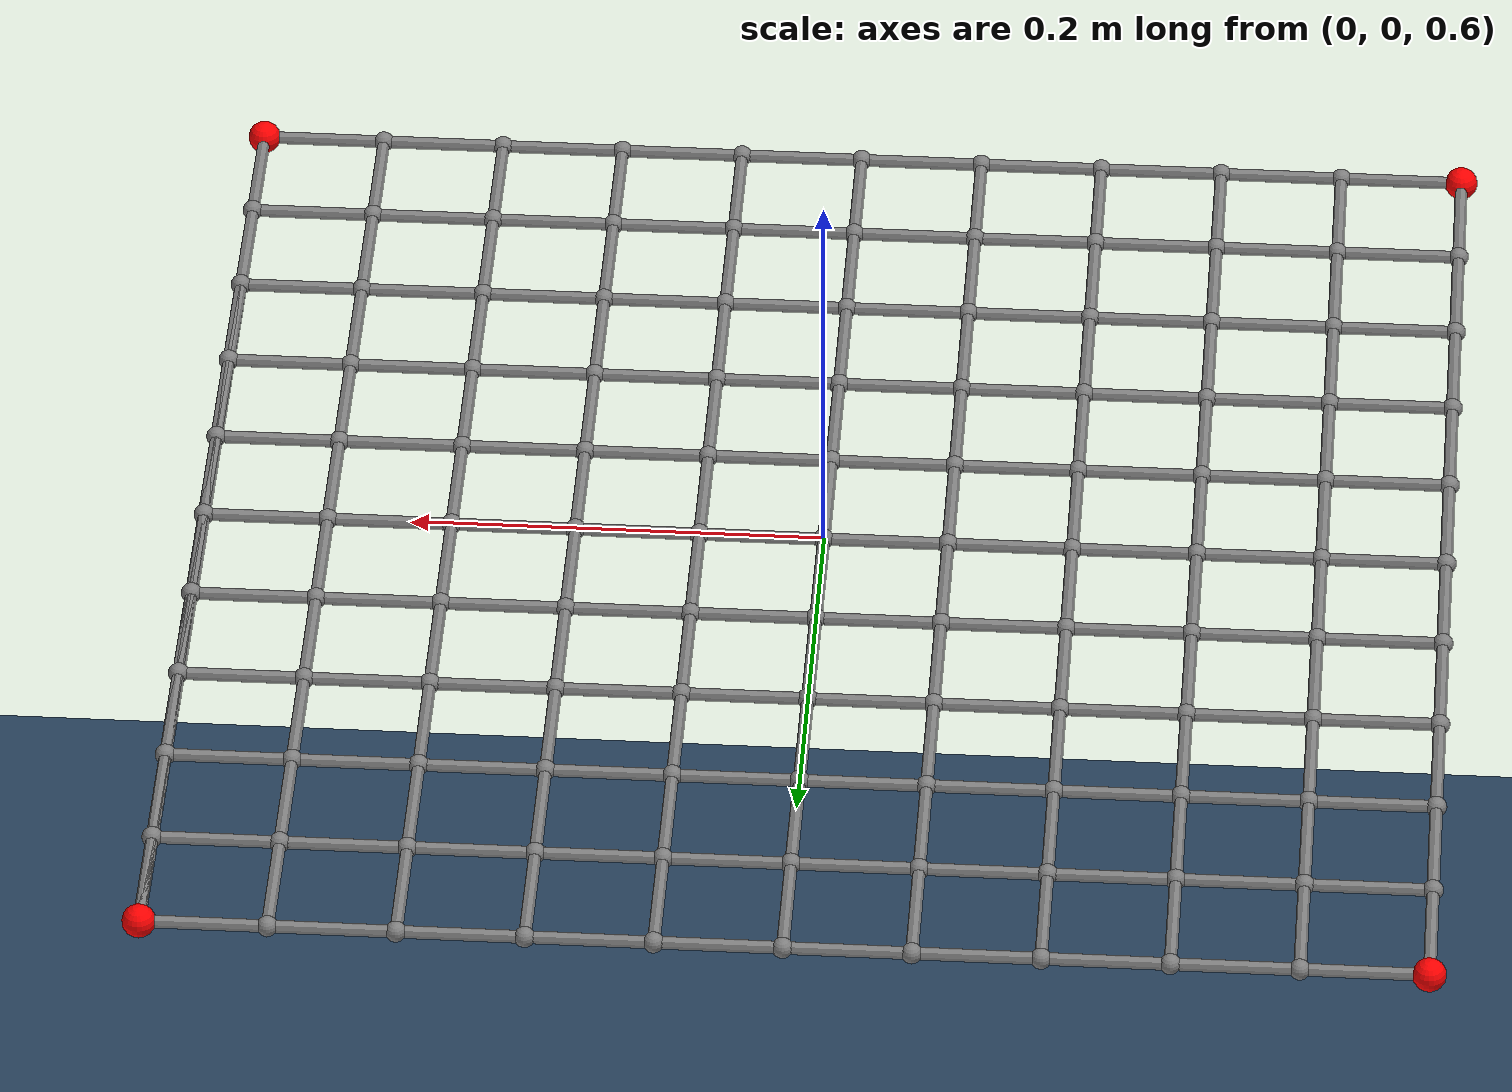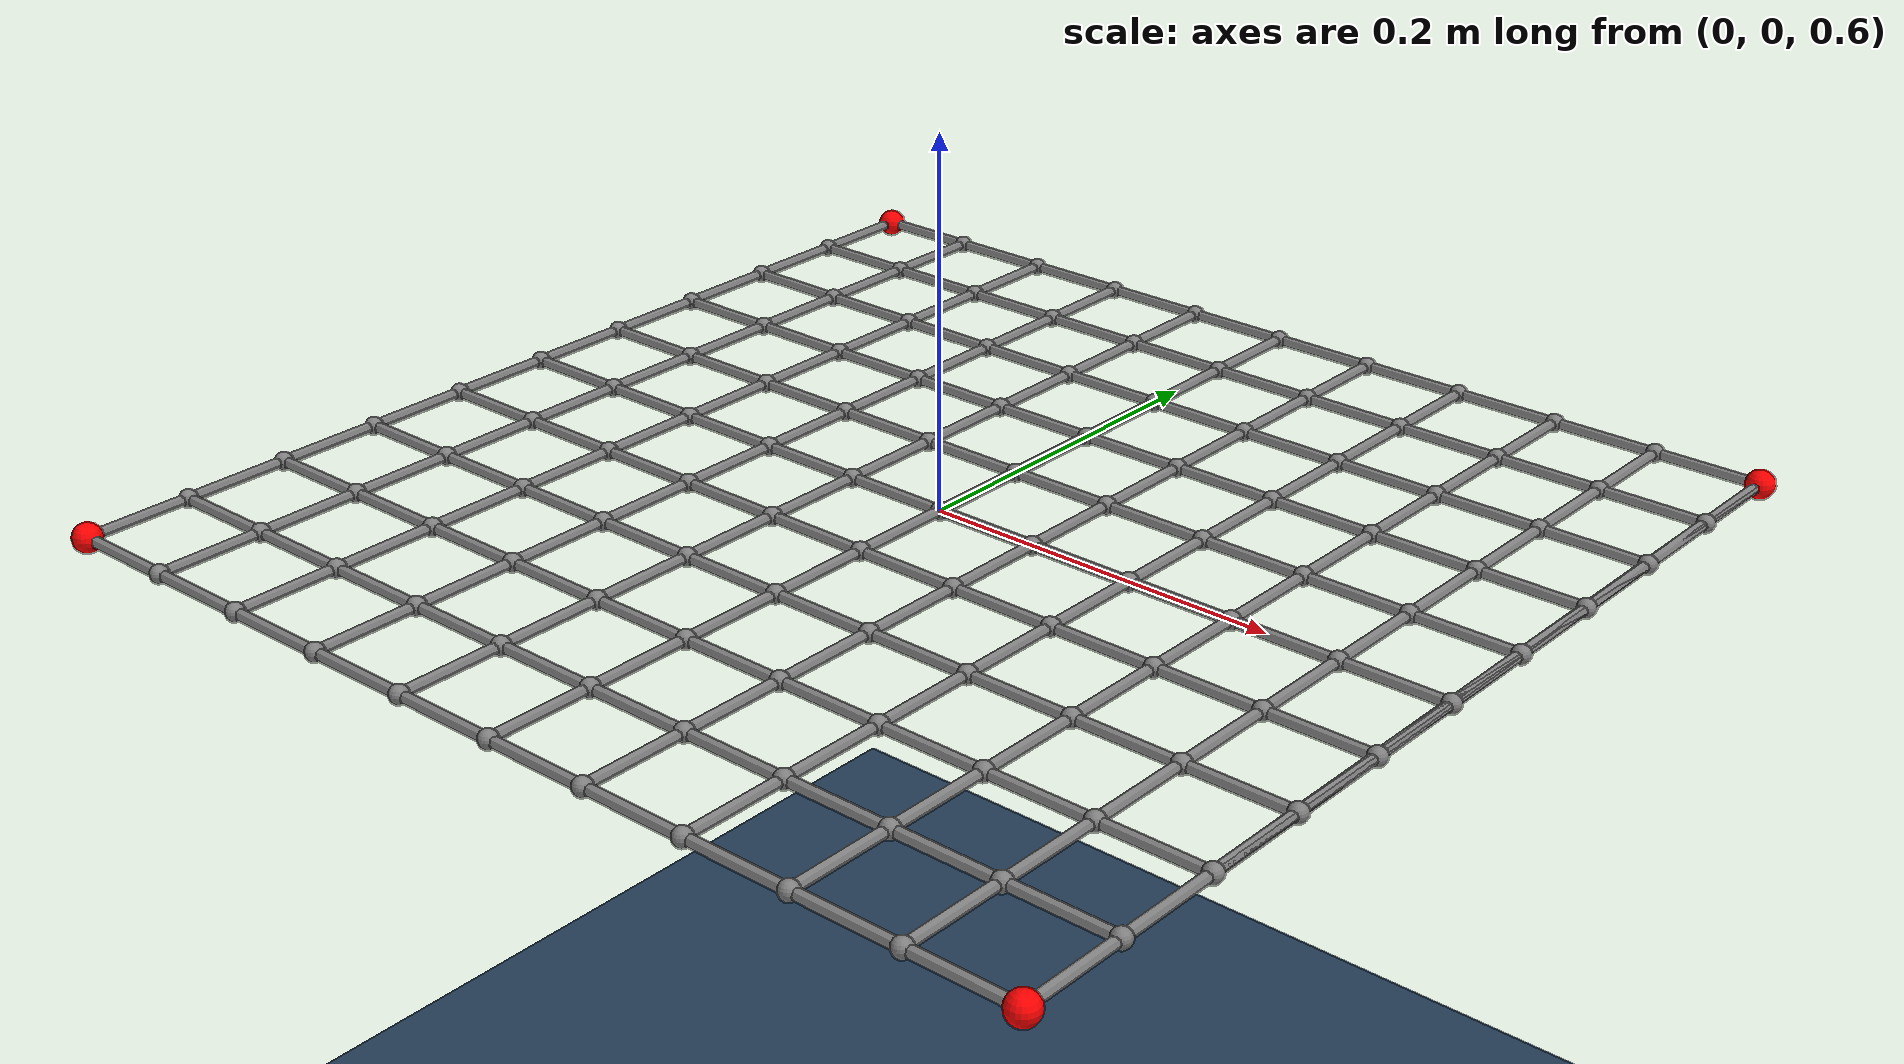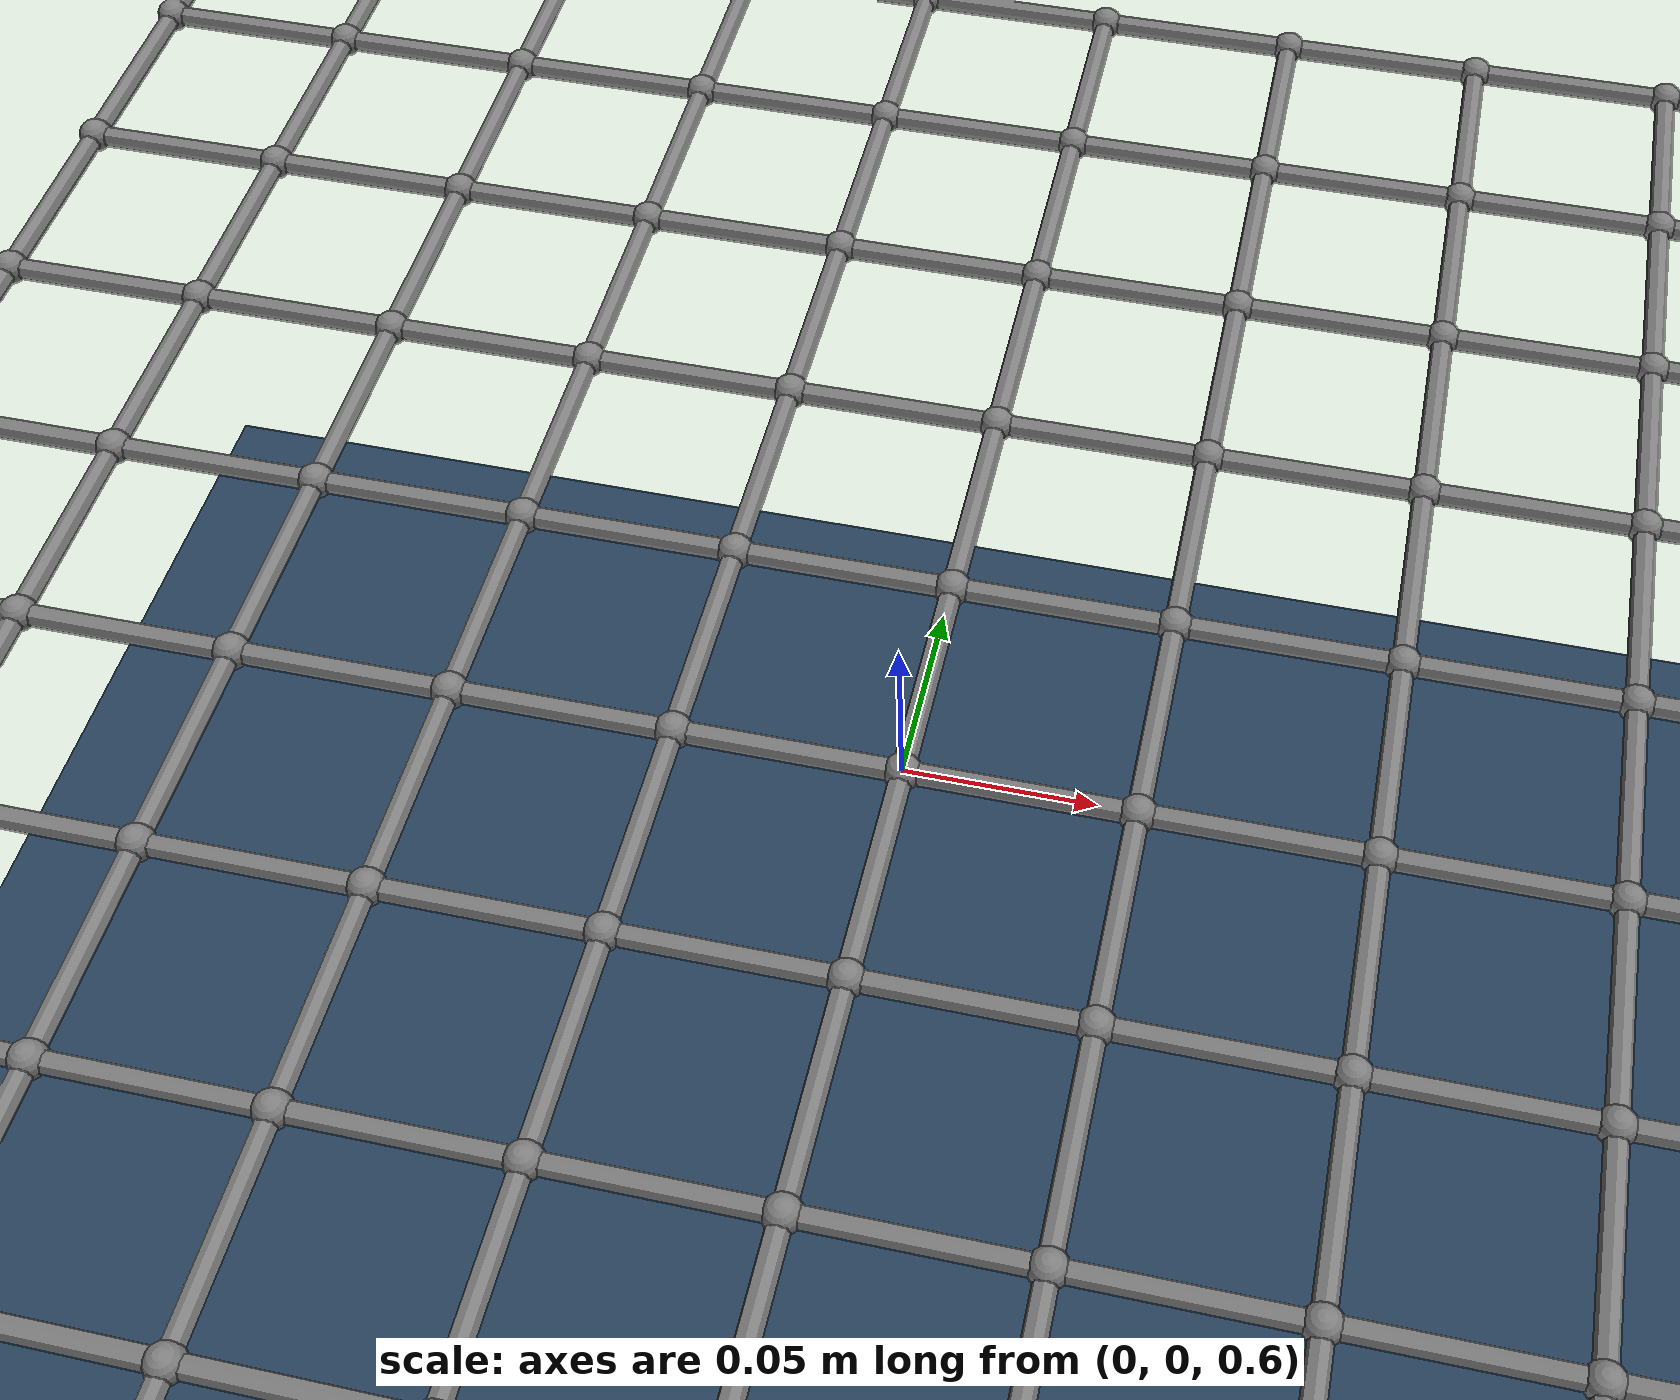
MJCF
<mujoco model="ultra_dense_net">
    <compiler meshdir="/home/lsq/scoop_it/assets/urdf/meshes" balanceinertia="true"/>
    <option timestep="0.002" integrator="RK4">
        <flag contact="enable"/>
    </option>

    <asset>
        <texture type="skybox" builtin="gradient" rgb1="0.3 0.5 0.7" rgb2="0 0 0" width="512" height="3072"/>
        <texture type="2d" name="groundplane" builtin="checker" mark="edge" rgb1="0.2 0.3 0.4" rgb2="0.1 0.2 0.3" markrgb="0.8 0.8 0.8" width="300" height="300"/>
        <material name="groundplane" texture="groundplane" texuniform="true" texrepeat="5 5" reflectance="0.2"/>
    </asset>

    <worldbody>
        <light pos="0 0 3" dir="0 0 -1" directional="true"/>
        <geom name="floor" size="0 0 0.05" type="plane" material="groundplane"/>

        <body name="b0_0" pos="-0.30 -0.30 0.6"><geom type="sphere" size="0.008" rgba="1 0 0 1"/><site name="s0_0"/></body>
        <body name="b0_1" pos="-0.24 -0.30 0.6"><joint type="ball"/><geom type="sphere" size="0.005"/><site name="s0_1"/></body>
        <body name="b0_2" pos="-0.18 -0.30 0.6"><joint type="ball"/><geom type="sphere" size="0.005"/><site name="s0_2"/></body>
        <body name="b0_3" pos="-0.12 -0.30 0.6"><joint type="ball"/><geom type="sphere" size="0.005"/><site name="s0_3"/></body>
        <body name="b0_4" pos="-0.06 -0.30 0.6"><joint type="ball"/><geom type="sphere" size="0.005"/><site name="s0_4"/></body>
        <body name="b0_5" pos="0.00  -0.30 0.6"><joint type="ball"/><geom type="sphere" size="0.005"/><site name="s0_5"/></body>
        <body name="b0_6" pos="0.06  -0.30 0.6"><joint type="ball"/><geom type="sphere" size="0.005"/><site name="s0_6"/></body>
        <body name="b0_7" pos="0.12  -0.30 0.6"><joint type="ball"/><geom type="sphere" size="0.005"/><site name="s0_7"/></body>
        <body name="b0_8" pos="0.18  -0.30 0.6"><joint type="ball"/><geom type="sphere" size="0.005"/><site name="s0_8"/></body>
        <body name="b0_9" pos="0.24  -0.30 0.6"><joint type="ball"/><geom type="sphere" size="0.005"/><site name="s0_9"/></body>
        <body name="b0_10" pos="0.30 -0.30 0.6"><geom type="sphere" size="0.008" rgba="1 0 0 1"/><site name="s0_10"/></body>

        <body name="b1_0" pos="-0.30 -0.24 0.6"><joint type="ball"/><geom type="sphere" size="0.005"/><site name="s1_0"/></body>
        <body name="b1_1" pos="-0.24 -0.24 0.6"><joint type="ball"/><geom type="sphere" size="0.005"/><site name="s1_1"/></body>
        <body name="b1_2" pos="-0.18 -0.24 0.6"><joint type="ball"/><geom type="sphere" size="0.005"/><site name="s1_2"/></body>
        <body name="b1_3" pos="-0.12 -0.24 0.6"><joint type="ball"/><geom type="sphere" size="0.005"/><site name="s1_3"/></body>
        <body name="b1_4" pos="-0.06 -0.24 0.6"><joint type="ball"/><geom type="sphere" size="0.005"/><site name="s1_4"/></body>
        <body name="b1_5" pos="0.00  -0.24 0.6"><joint type="ball"/><geom type="sphere" size="0.005"/><site name="s1_5"/></body>
        <body name="b1_6" pos="0.06  -0.24 0.6"><joint type="ball"/><geom type="sphere" size="0.005"/><site name="s1_6"/></body>
        <body name="b1_7" pos="0.12  -0.24 0.6"><joint type="ball"/><geom type="sphere" size="0.005"/><site name="s1_7"/></body>
        <body name="b1_8" pos="0.18  -0.24 0.6"><joint type="ball"/><geom type="sphere" size="0.005"/><site name="s1_8"/></body>
        <body name="b1_9" pos="0.24  -0.24 0.6"><joint type="ball"/><geom type="sphere" size="0.005"/><site name="s1_9"/></body>
        <body name="b1_10" pos="0.30 -0.24 0.6"><joint type="ball"/><geom type="sphere" size="0.005"/><site name="s1_10"/></body>

        <body name="b2_0" pos="-0.30 -0.18 0.6"><joint type="ball"/><geom type="sphere" size="0.005"/><site name="s2_0"/></body>
        <body name="b2_1" pos="-0.24 -0.18 0.6"><joint type="ball"/><geom type="sphere" size="0.005"/><site name="s2_1"/></body>
        <body name="b2_2" pos="-0.18 -0.18 0.6"><joint type="ball"/><geom type="sphere" size="0.005"/><site name="s2_2"/></body>
        <body name="b2_3" pos="-0.12 -0.18 0.6"><joint type="ball"/><geom type="sphere" size="0.005"/><site name="s2_3"/></body>
        <body name="b2_4" pos="-0.06 -0.18 0.6"><joint type="ball"/><geom type="sphere" size="0.005"/><site name="s2_4"/></body>
        <body name="b2_5" pos="0.00  -0.18 0.6"><joint type="ball"/><geom type="sphere" size="0.005"/><site name="s2_5"/></body>
        <body name="b2_6" pos="0.06  -0.18 0.6"><joint type="ball"/><geom type="sphere" size="0.005"/><site name="s2_6"/></body>
        <body name="b2_7" pos="0.12  -0.18 0.6"><joint type="ball"/><geom type="sphere" size="0.005"/><site name="s2_7"/></body>
        <body name="b2_8" pos="0.18  -0.18 0.6"><joint type="ball"/><geom type="sphere" size="0.005"/><site name="s2_8"/></body>
        <body name="b2_9" pos="0.24 -0.18 0.6"><joint type="ball"/><geom type="sphere" size="0.005"/><site name="s2_9"/></body>
        <body name="b2_10" pos="0.30 -0.18 0.6"><joint type="ball"/><geom type="sphere" size="0.005"/><site name="s2_10"/></body>

        <body name="b3_0" pos="-0.30 -0.12 0.6"><joint type="ball"/><geom type="sphere" size="0.005"/><site name="s3_0"/></body>
        <body name="b3_1" pos="-0.24 -0.12 0.6"><joint type="ball"/><geom type="sphere" size="0.005"/><site name="s3_1"/></body>
        <body name="b3_2" pos="-0.18 -0.12 0.6"><joint type="ball"/><geom type="sphere" size="0.005"/><site name="s3_2"/></body>
        <body name="b3_3" pos="-0.12 -0.12 0.6"><joint type="ball"/><geom type="sphere" size="0.005"/><site name="s3_3"/></body>
        <body name="b3_4" pos="-0.06 -0.12 0.6"><joint type="ball"/><geom type="sphere" size="0.005"/><site name="s3_4"/></body>
        <body name="b3_5" pos="0.00  -0.12 0.6"><joint type="ball"/><geom type="sphere" size="0.005"/><site name="s3_5"/></body>
        <body name="b3_6" pos="0.06  -0.12 0.6"><joint type="ball"/><geom type="sphere" size="0.005"/><site name="s3_6"/></body>
        <body name="b3_7" pos="0.12  -0.12 0.6"><joint type="ball"/><geom type="sphere" size="0.005"/><site name="s3_7"/></body>
        <body name="b3_8" pos="0.18  -0.12 0.6"><joint type="ball"/><geom type="sphere" size="0.005"/><site name="s3_8"/></body>
        <body name="b3_9" pos="0.24 -0.12 0.6"><joint type="ball"/><geom type="sphere" size="0.005"/><site name="s3_9"/></body>
        <body name="b3_10" pos="0.30 -0.12 0.6"><joint type="ball"/><geom type="sphere" size="0.005"/><site name="s3_10"/></body>

        <body name="b4_0" pos="-0.30 -0.06 0.6"><joint type="ball"/><geom type="sphere" size="0.005"/><site name="s4_0"/></body>
        <body name="b4_1" pos="-0.24 -0.06 0.6"><joint type="ball"/><geom type="sphere" size="0.005"/><site name="s4_1"/></body>
        <body name="b4_2" pos="-0.18 -0.06 0.6"><joint type="ball"/><geom type="sphere" size="0.005"/><site name="s4_2"/></body>
        <body name="b4_3" pos="-0.12 -0.06 0.6"><joint type="ball"/><geom type="sphere" size="0.005"/><site name="s4_3"/></body>
        <body name="b4_4" pos="-0.06 -0.06 0.6"><joint type="ball"/><geom type="sphere" size="0.005"/><site name="s4_4"/></body>
        <body name="b4_5" pos="0.00  -0.06 0.6"><joint type="ball"/><geom type="sphere" size="0.005"/><site name="s4_5"/></body>
        <body name="b4_6" pos="0.06  -0.06 0.6"><joint type="ball"/><geom type="sphere" size="0.005"/><site name="s4_6"/></body>
        <body name="b4_7" pos="0.12  -0.06 0.6"><joint type="ball"/><geom type="sphere" size="0.005"/><site name="s4_7"/></body>
        <body name="b4_8" pos="0.18  -0.06 0.6"><joint type="ball"/><geom type="sphere" size="0.005"/><site name="s4_8"/></body>
        <body name="b4_9" pos="0.24 -0.06 0.6"><joint type="ball"/><geom type="sphere" size="0.005"/><site name="s4_9"/></body>
        <body name="b4_10" pos="0.30 -0.06 0.6"><joint type="ball"/><geom type="sphere" size="0.005"/><site name="s4_10"/></body>

        <body name="b5_0" pos="-0.30 0.00 0.6"><joint type="ball"/><geom type="sphere" size="0.005"/><site name="s5_0"/></body>
        <body name="b5_1" pos="-0.24 0.00 0.6"><joint type="ball"/><geom type="sphere" size="0.005"/><site name="s5_1"/></body>
        <body name="b5_2" pos="-0.18 0.00 0.6"><joint type="ball"/><geom type="sphere" size="0.005"/><site name="s5_2"/></body>
        <body name="b5_3" pos="-0.12 0.00 0.6"><joint type="ball"/><geom type="sphere" size="0.005"/><site name="s5_3"/></body>
        <body name="b5_4" pos="-0.06 0.00 0.6"><joint type="ball"/><geom type="sphere" size="0.005"/><site name="s5_4"/></body>
        <body name="b5_5" pos="0.00  0.00 0.6"><joint type="ball"/><geom type="sphere" size="0.005"/><site name="s5_5"/></body>
        <body name="b5_6" pos="0.06  0.00 0.6"><joint type="ball"/><geom type="sphere" size="0.005"/><site name="s5_6"/></body>
        <body name="b5_7" pos="0.12  0.00 0.6"><joint type="ball"/><geom type="sphere" size="0.005"/><site name="s5_7"/></body>
        <body name="b5_8" pos="0.18  0.00 0.6"><joint type="ball"/><geom type="sphere" size="0.005"/><site name="s5_8"/></body>
        <body name="b5_9" pos="0.24 0.00 0.6"><joint type="ball"/><geom type="sphere" size="0.005"/><site name="s5_9"/></body>
        <body name="b5_10" pos="0.30 0.00 0.6"><joint type="ball"/><geom type="sphere" size="0.005"/><site name="s5_10"/></body>

        <body name="b6_0" pos="-0.30 0.06 0.6"><joint type="ball"/><geom type="sphere" size="0.005"/><site name="s6_0"/></body>
        <body name="b6_1" pos="-0.24 0.06 0.6"><joint type="ball"/><geom type="sphere" size="0.005"/><site name="s6_1"/></body>
        <body name="b6_2" pos="-0.18 0.06 0.6"><joint type="ball"/><geom type="sphere" size="0.005"/><site name="s6_2"/></body>
        <body name="b6_3" pos="-0.12 0.06 0.6"><joint type="ball"/><geom type="sphere" size="0.005"/><site name="s6_3"/></body>
        <body name="b6_4" pos="-0.06 0.06 0.6"><joint type="ball"/><geom type="sphere" size="0.005"/><site name="s6_4"/></body>
        <body name="b6_5" pos="0.00  0.06 0.6"><joint type="ball"/><geom type="sphere" size="0.005"/><site name="s6_5"/></body>
        <body name="b6_6" pos="0.06  0.06 0.6"><joint type="ball"/><geom type="sphere" size="0.005"/><site name="s6_6"/></body>
        <body name="b6_7" pos="0.12  0.06 0.6"><joint type="ball"/><geom type="sphere" size="0.005"/><site name="s6_7"/></body>
        <body name="b6_8" pos="0.18  0.06 0.6"><joint type="ball"/><geom type="sphere" size="0.005"/><site name="s6_8"/></body>
        <body name="b6_9" pos="0.24 0.06 0.6"><joint type="ball"/><geom type="sphere" size="0.005"/><site name="s6_9"/></body>
        <body name="b6_10" pos="0.30 0.06 0.6"><joint type="ball"/><geom type="sphere" size="0.005"/><site name="s6_10"/></body>

        <body name="b7_0" pos="-0.30 0.12 0.6"><joint type="ball"/><geom type="sphere" size="0.005"/><site name="s7_0"/></body>
        <body name="b7_1" pos="-0.24 0.12 0.6"><joint type="ball"/><geom type="sphere" size="0.005"/><site name="s7_1"/></body>
        <body name="b7_2" pos="-0.18 0.12 0.6"><joint type="ball"/><geom type="sphere" size="0.005"/><site name="s7_2"/></body>
        <body name="b7_3" pos="-0.12 0.12 0.6"><joint type="ball"/><geom type="sphere" size="0.005"/><site name="s7_3"/></body>
        <body name="b7_4" pos="-0.06 0.12 0.6"><joint type="ball"/><geom type="sphere" size="0.005"/><site name="s7_4"/></body>
        <body name="b7_5" pos="0.00  0.12 0.6"><joint type="ball"/><geom type="sphere" size="0.005"/><site name="s7_5"/></body>
        <body name="b7_6" pos="0.06  0.12 0.6"><joint type="ball"/><geom type="sphere" size="0.005"/><site name="s7_6"/></body>
        <body name="b7_7" pos="0.12  0.12 0.6"><joint type="ball"/><geom type="sphere" size="0.005"/><site name="s7_7"/></body>
        <body name="b7_8" pos="0.18  0.12 0.6"><joint type="ball"/><geom type="sphere" size="0.005"/><site name="s7_8"/></body>
        <body name="b7_9" pos="0.24 0.12 0.6"><joint type="ball"/><geom type="sphere" size="0.005"/><site name="s7_9"/></body>
        <body name="b7_10" pos="0.30 0.12 0.6"><joint type="ball"/><geom type="sphere" size="0.005"/><site name="s7_10"/></body>

        <body name="b8_0" pos="-0.30 0.18 0.6"><joint type="ball"/><geom type="sphere" size="0.005"/><site name="s8_0"/></body>
        <body name="b8_1" pos="-0.24 0.18 0.6"><joint type="ball"/><geom type="sphere" size="0.005"/><site name="s8_1"/></body>
        <body name="b8_2" pos="-0.18 0.18 0.6"><joint type="ball"/><geom type="sphere" size="0.005"/><site name="s8_2"/></body>
        <body name="b8_3" pos="-0.12 0.18 0.6"><joint type="ball"/><geom type="sphere" size="0.005"/><site name="s8_3"/></body>
        <body name="b8_4" pos="-0.06 0.18 0.6"><joint type="ball"/><geom type="sphere" size="0.005"/><site name="s8_4"/></body>
        <body name="b8_5" pos="0.00  0.18 0.6"><joint type="ball"/><geom type="sphere" size="0.005"/><site name="s8_5"/></body>
        <body name="b8_6" pos="0.06  0.18 0.6"><joint type="ball"/><geom type="sphere" size="0.005"/><site name="s8_6"/></body>
        <body name="b8_7" pos="0.12  0.18 0.6"><joint type="ball"/><geom type="sphere" size="0.005"/><site name="s8_7"/></body>
        <body name="b8_8" pos="0.18  0.18 0.6"><joint type="ball"/><geom type="sphere" size="0.005"/><site name="s8_8"/></body>
        <body name="b8_9" pos="0.24 0.18 0.6"><joint type="ball"/><geom type="sphere" size="0.005"/><site name="s8_9"/></body>
        <body name="b8_10" pos="0.30 0.18 0.6"><joint type="ball"/><geom type="sphere" size="0.005"/><site name="s8_10"/></body>

        <body name="b9_0" pos="-0.30 0.24 0.6"><joint type="ball"/><geom type="sphere" size="0.005"/><site name="s9_0"/></body>
        <body name="b9_1" pos="-0.24 0.24 0.6"><joint type="ball"/><geom type="sphere" size="0.005"/><site name="s9_1"/></body>
        <body name="b9_2" pos="-0.18 0.24 0.6"><joint type="ball"/><geom type="sphere" size="0.005"/><site name="s9_2"/></body>
        <body name="b9_3" pos="-0.12 0.24 0.6"><joint type="ball"/><geom type="sphere" size="0.005"/><site name="s9_3"/></body>
        <body name="b9_4" pos="-0.06 0.24 0.6"><joint type="ball"/><geom type="sphere" size="0.005"/><site name="s9_4"/></body>
        <body name="b9_5" pos="0.00  0.24 0.6"><joint type="ball"/><geom type="sphere" size="0.005"/><site name="s9_5"/></body>
        <body name="b9_6" pos="0.06  0.24 0.6"><joint type="ball"/><geom type="sphere" size="0.005"/><site name="s9_6"/></body>
        <body name="b9_7" pos="0.12  0.24 0.6"><joint type="ball"/><geom type="sphere" size="0.005"/><site name="s9_7"/></body>
        <body name="b9_8" pos="0.18  0.24 0.6"><joint type="ball"/><geom type="sphere" size="0.005"/><site name="s9_8"/></body>
        <body name="b9_9" pos="0.24 0.24 0.6"><joint type="ball"/><geom type="sphere" size="0.005"/><site name="s9_9"/></body>
        <body name="b9_10" pos="0.30 0.24 0.6"><joint type="ball"/><geom type="sphere" size="0.005"/><site name="s9_10"/></body>

        <body name="b10_0" pos="-0.30 0.30 0.6"><geom type="sphere" size="0.008" rgba="1 0 0 1"/><site name="s10_0"/></body>
        <body name="b10_1" pos="-0.24 0.30 0.6"><joint type="ball"/><geom type="sphere" size="0.005"/><site name="s10_1"/></body>
        <body name="b10_2" pos="-0.18 0.30 0.6"><joint type="ball"/><geom type="sphere" size="0.005"/><site name="s10_2"/></body>
        <body name="b10_3" pos="-0.12 0.30 0.6"><joint type="ball"/><geom type="sphere" size="0.005"/><site name="s10_3"/></body>
        <body name="b10_4" pos="-0.06 0.30 0.6"><joint type="ball"/><geom type="sphere" size="0.005"/><site name="s10_4"/></body>
        <body name="b10_5" pos="0.00  0.30 0.6"><joint type="ball"/><geom type="sphere" size="0.005"/><site name="s10_5"/></body>
        <body name="b10_6" pos="0.06  0.30 0.6"><joint type="ball"/><geom type="sphere" size="0.005"/><site name="s10_6"/></body>
        <body name="b10_7" pos="0.12  0.30 0.6"><joint type="ball"/><geom type="sphere" size="0.005"/><site name="s10_7"/></body>
        <body name="b10_8" pos="0.18  0.30 0.6"><joint type="ball"/><geom type="sphere" size="0.005"/><site name="s10_8"/></body>
        <body name="b10_9" pos="0.24 0.30 0.6"><joint type="ball"/><geom type="sphere" size="0.005"/><site name="s10_9"/></body>
        <body name="b10_10" pos="0.30 0.30 0.6"><geom type="sphere" size="0.008" rgba="1 0 0 1"/><site name="s10_10"/></body>

    </worldbody>

    <tendon>
        <spatial name="h0" stiffness="80" damping="3"><site site="s0_0"/><site site="s0_1"/><site site="s0_2"/><site site="s0_3"/><site site="s0_4"/><site site="s0_5"/><site site="s0_6"/><site site="s0_7"/><site site="s0_8"/><site site="s0_9"/><site site="s0_10"/></spatial>
        <spatial name="h1" stiffness="80" damping="3"><site site="s1_0"/><site site="s1_1"/><site site="s1_2"/><site site="s1_3"/><site site="s1_4"/><site site="s1_5"/><site site="s1_6"/><site site="s1_7"/><site site="s1_8"/><site site="s1_9"/><site site="s1_10"/></spatial>
        <spatial name="h2" stiffness="80" damping="3"><site site="s2_0"/><site site="s2_1"/><site site="s2_2"/><site site="s2_3"/><site site="s2_4"/><site site="s2_5"/><site site="s2_6"/><site site="s2_7"/><site site="s2_8"/><site site="s2_9"/><site site="s2_10"/></spatial>
        <spatial name="h3" stiffness="80" damping="3"><site site="s3_0"/><site site="s3_1"/><site site="s3_2"/><site site="s3_3"/><site site="s3_4"/><site site="s3_5"/><site site="s3_6"/><site site="s3_7"/><site site="s3_8"/><site site="s3_9"/><site site="s3_10"/></spatial>
        <spatial name="h4" stiffness="80" damping="3"><site site="s4_0"/><site site="s4_1"/><site site="s4_2"/><site site="s4_3"/><site site="s4_4"/><site site="s4_5"/><site site="s4_6"/><site site="s4_7"/><site site="s4_8"/><site site="s4_9"/><site site="s4_10"/></spatial>
        <spatial name="h5" stiffness="80" damping="3"><site site="s5_0"/><site site="s5_1"/><site site="s5_2"/><site site="s5_3"/><site site="s5_4"/><site site="s5_5"/><site site="s5_6"/><site site="s5_7"/><site site="s5_8"/><site site="s5_9"/><site site="s5_10"/></spatial>
        <spatial name="h6" stiffness="80" damping="3"><site site="s6_0"/><site site="s6_1"/><site site="s6_2"/><site site="s6_3"/><site site="s6_4"/><site site="s6_5"/><site site="s6_6"/><site site="s6_7"/><site site="s6_8"/><site site="s6_9"/><site site="s6_10"/></spatial>
        <spatial name="h7" stiffness="80" damping="3"><site site="s7_0"/><site site="s7_1"/><site site="s7_2"/><site site="s7_3"/><site site="s7_4"/><site site="s7_5"/><site site="s7_6"/><site site="s7_7"/><site site="s7_8"/><site site="s7_9"/><site site="s7_10"/></spatial>
        <spatial name="h8" stiffness="80" damping="3"><site site="s8_0"/><site site="s8_1"/><site site="s8_2"/><site site="s8_3"/><site site="s8_4"/><site site="s8_5"/><site site="s8_6"/><site site="s8_7"/><site site="s8_8"/><site site="s8_9"/><site site="s8_10"/></spatial>
        <spatial name="h9" stiffness="80" damping="3"><site site="s9_0"/><site site="s9_1"/><site site="s9_2"/><site site="s9_3"/><site site="s9_4"/><site site="s9_5"/><site site="s9_6"/><site site="s9_7"/><site site="s9_8"/><site site="s9_9"/><site site="s9_10"/></spatial>
        <spatial name="h10" stiffness="80" damping="3"><site site="s10_0"/><site site="s10_1"/><site site="s10_2"/><site site="s10_3"/><site site="s10_4"/><site site="s10_5"/><site site="s10_6"/><site site="s10_7"/><site site="s10_8"/><site site="s10_9"/><site site="s10_10"/></spatial>

        <spatial name="v0" stiffness="80" damping="3"><site site="s0_0"/><site site="s1_0"/><site site="s2_0"/><site site="s3_0"/><site site="s4_0"/><site site="s5_0"/><site site="s6_0"/><site site="s7_0"/><site site="s8_0"/><site site="s9_0"/><site site="s10_0"/></spatial>
        <spatial name="v1" stiffness="80" damping="3"><site site="s0_1"/><site site="s1_1"/><site site="s2_1"/><site site="s3_1"/><site site="s4_1"/><site site="s5_1"/><site site="s6_1"/><site site="s7_1"/><site site="s8_1"/><site site="s9_1"/><site site="s10_1"/></spatial>
        <spatial name="v2" stiffness="80" damping="3"><site site="s0_2"/><site site="s1_2"/><site site="s2_2"/><site site="s3_2"/><site site="s4_2"/><site site="s5_2"/><site site="s6_2"/><site site="s7_2"/><site site="s8_2"/><site site="s9_2"/><site site="s10_2"/></spatial>
        <spatial name="v3" stiffness="80" damping="3"><site site="s0_3"/><site site="s1_3"/><site site="s2_3"/><site site="s3_3"/><site site="s4_3"/><site site="s5_3"/><site site="s6_3"/><site site="s7_3"/><site site="s8_3"/><site site="s9_3"/><site site="s10_3"/></spatial>
        <spatial name="v4" stiffness="80" damping="3"><site site="s0_4"/><site site="s1_4"/><site site="s2_4"/><site site="s3_4"/><site site="s4_4"/><site site="s5_4"/><site site="s6_4"/><site site="s7_4"/><site site="s8_4"/><site site="s9_4"/><site site="s10_4"/></spatial>
        <spatial name="v5" stiffness="80" damping="3"><site site="s0_5"/><site site="s1_5"/><site site="s2_5"/><site site="s3_5"/><site site="s4_5"/><site site="s5_5"/><site site="s6_5"/><site site="s7_5"/><site site="s8_5"/><site site="s9_5"/><site site="s10_5"/></spatial>
        <spatial name="v6" stiffness="80" damping="3"><site site="s0_6"/><site site="s1_6"/><site site="s2_6"/><site site="s3_6"/><site site="s4_6"/><site site="s5_6"/><site site="s6_6"/><site site="s7_6"/><site site="s8_6"/><site site="s9_6"/><site site="s10_6"/></spatial>
        <spatial name="v7" stiffness="80" damping="3"><site site="s0_7"/><site site="s1_7"/><site site="s2_7"/><site site="s3_7"/><site site="s4_7"/><site site="s5_7"/><site site="s6_7"/><site site="s7_7"/><site site="s8_7"/><site site="s9_7"/><site site="s10_7"/></spatial>
        <spatial name="v8" stiffness="80" damping="3"><site site="s0_8"/><site site="s1_8"/><site site="s2_8"/><site site="s3_8"/><site site="s4_8"/><site site="s5_8"/><site site="s6_8"/><site site="s7_8"/><site site="s8_8"/><site site="s9_8"/><site site="s10_8"/></spatial>
        <spatial name="v9" stiffness="80" damping="3"><site site="s0_9"/><site site="s1_9"/><site site="s2_9"/><site site="s3_9"/><site site="s4_9"/><site site="s5_9"/><site site="s6_9"/><site site="s7_9"/><site site="s8_9"/><site site="s9_9"/><site site="s10_9"/></spatial>
        <spatial name="v10" stiffness="80" damping="3"><site site="s0_10"/><site site="s10_10"/><site site="s2_10"/><site site="s3_10"/><site site="s4_10"/><site site="s5_10"/><site site="s6_10"/><site site="s7_10"/><site site="s8_10"/><site site="s9_10"/><site site="s10_10"/></spatial>
    </tendon>
</mujoco>
